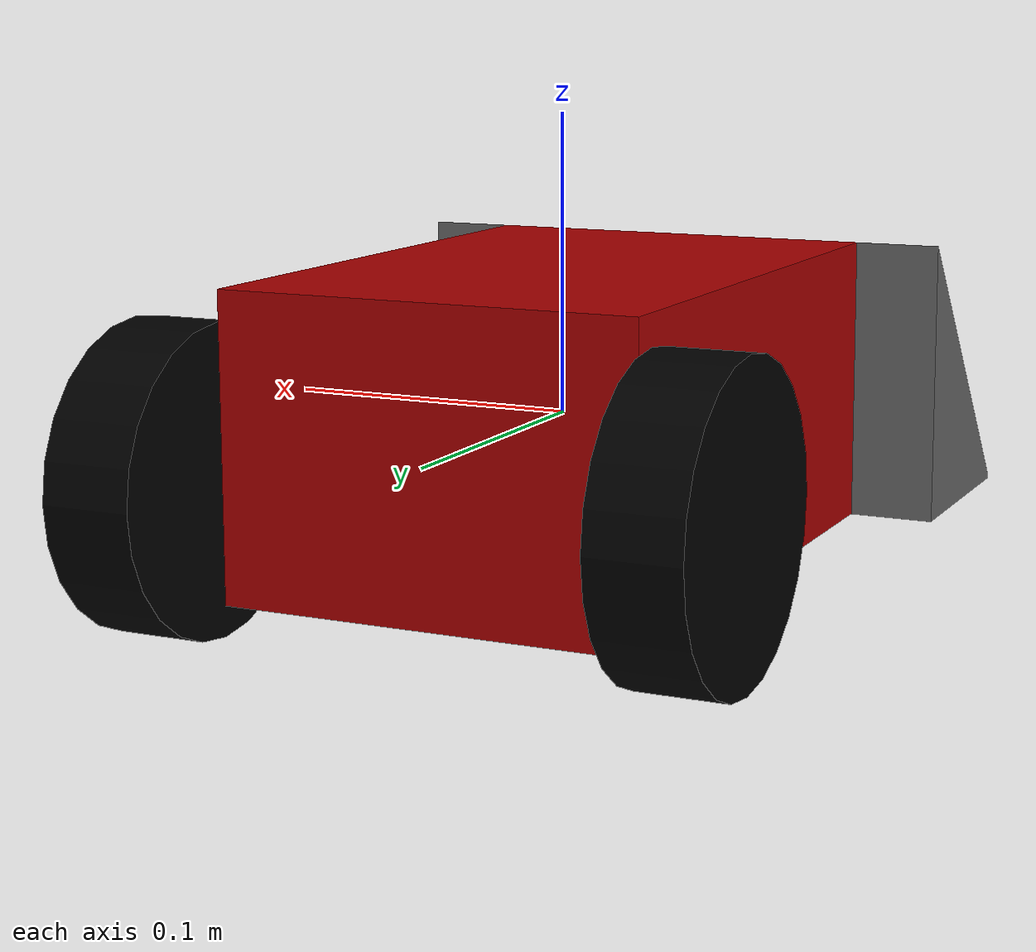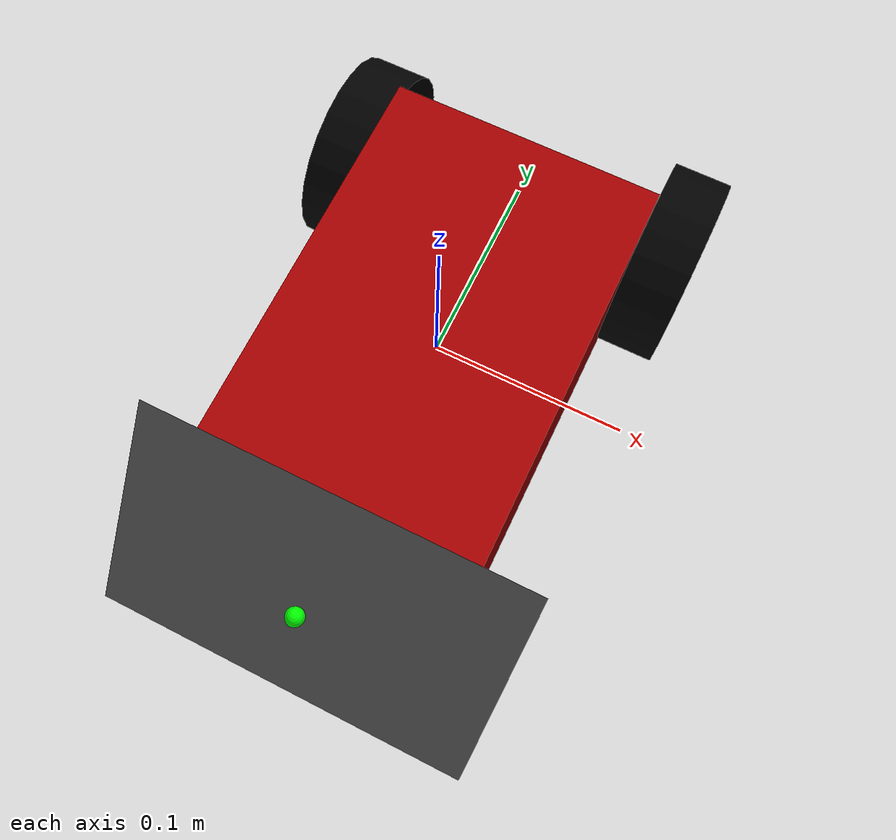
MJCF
<mujoco>
    <asset>
        <mesh name="rampa_mesh" file="../assets/rampa.stl" scale="1 1 1" />
    </asset>

    <default>
        <default class="wheel">
            <geom type="cylinder" friction="1.2 0.01 0.01" condim="4" rgba="0 0 0 1" />
        </default>
        <default class="robot_body">
            <geom friction="0.5 0.005 0.001" condim="4" solref="0.004 1" solimp="0.95 0.99 0.001" />
        </default>
    </default>

    <worldbody>
        <body name="robot" pos="0 0 0">

            <!-- Sites para sensores IR -->
            <site name="line_left"
                pos="0.05 -0.11 -0.052"
                size="0.005"
                rgba="1 1 0 1" />

            <site name="line_right"
                pos="-0.05 -0.11 -0.052"
                size="0.005"
                rgba="1 1 0 1" />

            <site name="front_ir"
                pos="0 -0.15 0"
                size="0.005"
                rgba="0 1 0 1" />

            <!-- Permite movimiento libre -->
            <freejoint name="robot_root" />

            <!-- Cuerpo principal -->
            <geom name="robot_body"
                class="robot_body"
                type="box"
                size="0.07 0.1 0.05"
                rgba="0.667 0 0 1" />

            <!-- Rampa (mesh STL) -->
            <geom name="robot_rampa"
                class="robot_body"
                type="mesh"
                mesh="rampa_mesh"
                rgba="0.4 0.4 0.4 1" />

            <!-- Rueda izquierda -->
            <body name="robot_wheel_left" pos="0.085 0.1 -0.01">
                <joint name="robot_left_wheel_joint"
                    type="hinge"
                    axis="1 0 0"
                    damping="0.01" />
                <geom class="wheel"
                    type="cylinder"
                    size="0.05 0.015"
                    euler="0 90 0" />
            </body>

            <!-- Rueda derecha -->
            <body name="robot_wheel_right" pos="-0.085 0.09 -0.01">
                <joint name="robot_right_wheel_joint"
                    type="hinge"
                    axis="1 0 0"
                    damping="0.01" />
                <geom class="wheel"
                    type="cylinder"
                    size="0.05 0.015"
                    euler="0 90 0" />
            </body>

            <!-- Patín delantero (rueda libre omnidireccional) -->

            <body name="robot_caster" pos="0 -0.1 -0.05">
                <joint name="robot_caster_joint" type="ball" damping="0.001" />
                <geom type="sphere"
                    size="0.01"
                    friction="0.01 0.001 0.001"
                    rgba="0.667 0 0 1" />
            </body>

        </body>
    </worldbody>

    <actuator>
        <!-- velocity: controlás directamente la velocidad angular de cada rueda -->
        <velocity name="robot_left"
            joint="robot_left_wheel_joint"
            kv="0.5" />
        <velocity name="robot_right"
            joint="robot_right_wheel_joint"
            kv="0.5" />
    </actuator>
</mujoco>
